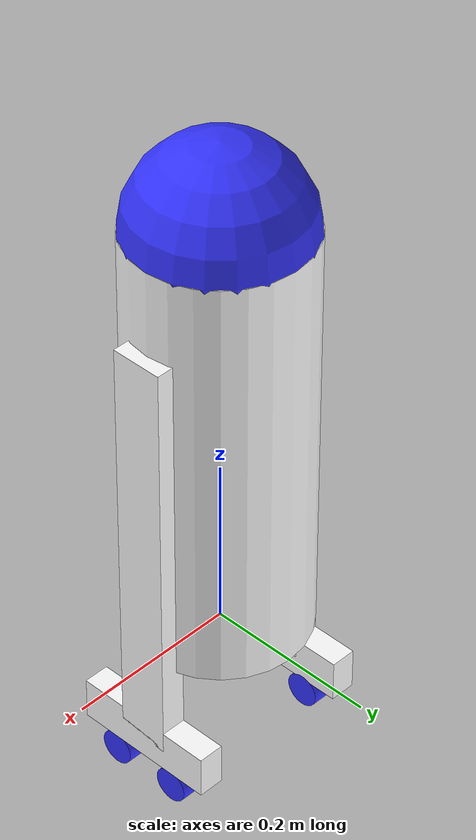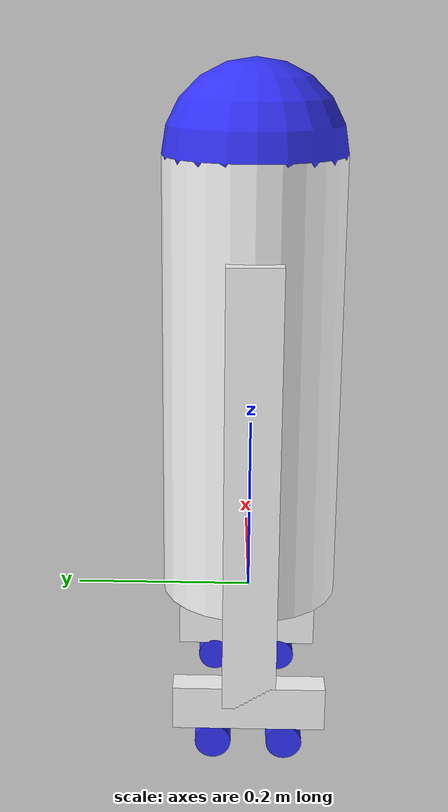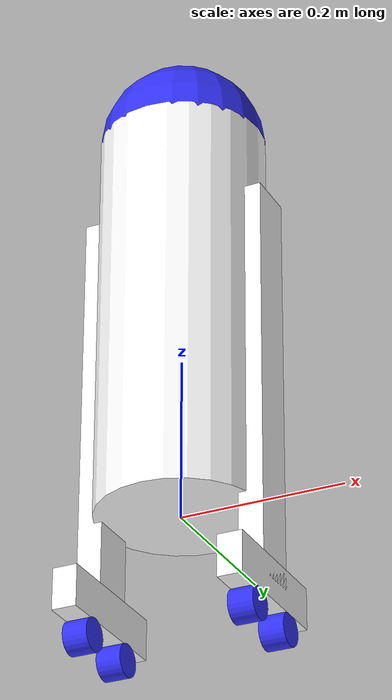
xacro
<?xml version="1.0"?>
<robot xmlns:xacro="http://www.ros.org/wiki/xacro" name="r2d2">

    <material name="white">
        <color rgba="1 1 1 1"/>
    </material>

    <material name="blue">
        <color rgba="0.2 0.2 1 1"/>
    </material>

    <material name="black">
        <color rgba="0 0 0 1"/>
    </material>

    <link name="base_link"></link>

    <joint name="base_footprint_joint" type="fixed">
        <parent link="base_link"/>
        <child link="base_footprint"/>
        <origin xyz="0 0 0" rpy="0 0 0"/>
    </joint>

    <link name="base_footprint"></link>

    <joint name="chassis_joint" type="fixed">
        <parent link="base_link"/>
        <child link="chassis"/>
        <origin xyz="0 0 0.25"/>
    </joint>

    <link name="chassis">
        <visual>
            <origin xyz="0 0 0"/>
            <geometry>
                <cylinder length="0.5" radius="0.1"/>
            </geometry>
            <material name="white"/>
        </visual>
        <collision>
            <origin xyz="0 0 0"/>
            <geometry>
                <cylinder length="0.5" radius="0.1"/>
            </geometry>
        </collision>
        <inertial>
            <mass value="1.0"/>
            <inertia ixx="0.0466667" iyy="0.0466667" izz="0.0100000" ixy="0.0" ixz="0.0" iyz="0.0"/>
        </inertial>
    </link>

    <joint name="head_joint" type="fixed">
        <parent link="base_link"/>
        <child link="head"/>
        <origin xyz="0 0 0.5"/>
        <axis xyz='0 0 1'/>
    </joint>

    <link name="head">
        <visual>
            <origin xyz="0 0 0" rpy="0 0 0"/>
            <geometry>
                <sphere radius="0.1"/>
            </geometry>
            <material name="blue"/>
        </visual>
        <collision>
            <origin xyz="0 0 0" rpy="0 0 0"/>
            <geometry>
                <sphere radius="0.1"/>
            </geometry>
        </collision>
        <inertial>
            <mass value="0.1"/>
            <inertia ixx="0.0020000" iyy="0.0020000" izz="0.0020000" ixy="0.0" ixz="0.0" iyz="0.0"/>
        </inertial>
    </link>

    <joint name="left_leg_joint" type="fixed">
        <parent link="chassis"/>
        <child link="left_leg"/>
        <origin xyz="0.1 0 -0.1"/>
    </joint>

    <link name="left_leg">
        <visual>
            <origin xyz="0 0 0" rpy="0 0 0"/>
            <geometry>
                <box size="0.03 0.06 0.5"/>
            </geometry>
            <material name="white"/>
        </visual>
        <collision>
            <origin xyz="0 0 0" rpy="0 0 0"/>
            <geometry>
                <box size="0.03 0.06 0.5"/>
            </geometry>
        </collision>
        <inertial>
            <mass value="5"/>
            <inertia ixx="0.0063400" iyy="0.0062725" izz="0.0001125" ixy="0.0" ixz="0.0" iyz="0.0"/>
        </inertial>
    </link>

    <joint name="right_leg_joint" type="fixed">
        <parent link="chassis"/>
        <child link="right_leg"/>
        <origin xyz="-0.1 0 -0.1"/>
    </joint>

    <link name="right_leg">
        <visual>
            <origin xyz="0 0 0" rpy="0 0 0"/>
            <geometry>
                <box size="0.03 0.06 0.5"/>
            </geometry>
            <material name="white"/>
        </visual>
        <collision>
            <origin xyz="0 0 0" rpy="0 0 0"/>
            <geometry>
                <box size="0.03 0.06 0.5"/>
            </geometry>
        </collision>
        <inertial>
            <mass value="5"/>
            <inertia ixx="0.0063400" iyy="0.0062725" izz="0.0001125" ixy="0.0" ixz="0.0" iyz="0.0"/>
        </inertial>
    </link>

    <joint name="left_wheel_base_joint" type="fixed">
        <parent link="left_leg"/>
        <child link="left_wheel_base"/>
        <origin xyz="0 0 -0.25"/>
    </joint>

    <link name="left_wheel_base">
        <visual>
            <origin xyz="0 0 0" rpy="0 0 0"/>
            <geometry>
                <box size="0.03 0.17 0.05"/>
            </geometry>
            <material name="white"/>
        </visual>
        <collision>
            <origin xyz="0 0 0" rpy="0 0 0"/>
            <geometry>
                <box size="0.03 0.17 0.05"/>
            </geometry>
        </collision>
        <inertial>
            <mass value="5"/>
            <inertia ixx="0.0005233" iyy="0.0000567" izz="0.0004967" ixy="0.0" ixz="0.0" iyz="0.0"/>
        </inertial>
    </link>

    <joint name="right_wheel_base_joint" type="fixed">
        <parent link="right_leg"/>
        <child link="right_wheel_base"/>
        <origin xyz="0 0 -0.25"/>
    </joint>

    <link name="right_wheel_base">
        <visual>
            <origin xyz="0 0 0" rpy="0 0 0"/>
            <geometry>
                <box size="0.03 0.17 0.05"/>
            </geometry>
            <material name="white"/>
        </visual>
        <collision>
            <origin xyz="0 0 0" rpy="0 0 0"/>
            <geometry>
                <box size="0.03 0.17 0.05"/>
            </geometry>
        </collision>
        <inertial>
            <mass value="5"/>
            <inertia ixx="0.0005233" iyy="0.0000567" izz="0.0004967" ixy="0.0" ixz="0.0" iyz="0.0"/>
        </inertial>
    </link>

    <joint name="left_wheel_1_joint" type="continuous">
        <parent link="left_wheel_base"/>
        <child link="left_wheel_1"/>
        <origin xyz="0 0.04 -0.042" rpy="0 -1.5708 0"/>
        <axis xyz='0 0 1'/>
    </joint>

    <link name="left_wheel_1">
        <visual>
            <origin xyz="0 0 0"/>
            <geometry>
                <cylinder radius="0.02" length="0.03"/>
            </geometry>
            <material name="blue"/>
        </visual>
        <collision>
            <origin xyz="0 0 0"/>
            <geometry>
                <cylinder radius="0.02" length="0.03"/>
            </geometry>
        </collision>
        <inertial>
            <mass value="10"/>
            <inertia ixx="0.0000200" iyy="0.0000175" izz="0.0000175" ixy="0.0" ixz="0.0" iyz="0.0"/>
        </inertial>
    </link>

    <joint name="left_wheel_2_joint" type="continuous">
        <parent link="left_wheel_base"/>
        <child link="left_wheel_2"/>
        <origin xyz="0 -0.04 -0.042" rpy="0 -1.5708 0"/>
        <axis xyz='0 0 1'/>
    </joint>

    <link name="left_wheel_2">
        <visual>
            <origin xyz="0 0 0"/>
            <geometry>
                <cylinder radius="0.02" length="0.03"/>
            </geometry>
            <material name="blue"/>
        </visual>
        <collision>
            <origin xyz="0 0 0"/>
            <geometry>
                <cylinder radius="0.02" length="0.03"/>
            </geometry>
        </collision>
        <inertial>
            <mass value="10"/>
            <inertia ixx="0.0000200" iyy="0.0000175" izz="0.0000175" ixy="0.0" ixz="0.0" iyz="0.0"/>
        </inertial>
    </link>

    <joint name="right_wheel_1_joint" type="continuous">
        <parent link="right_wheel_base"/>
        <child link="right_wheel_1"/>
        <origin xyz="0 0.04 -0.042" rpy="0 1.5708 0"/>
        <axis xyz='0 0 -1'/>
    </joint>

    <link name="right_wheel_1">
        <visual>
            <origin xyz="0 0 0"/>
            <geometry>
                <cylinder radius="0.02" length="0.03"/>
            </geometry>
            <material name="blue"/>
        </visual>
        <collision>
            <origin xyz="0 0 0"/>
            <geometry>
                <cylinder radius="0.02" length="0.03"/>
            </geometry>
        </collision>
        <inertial>
            <mass value="10"/>
            <inertia ixx="0.0000200" iyy="0.0000175" izz="0.0000175" ixy="0.0" ixz="0.0" iyz="0.0"/>
        </inertial>
    </link>

    <joint name="right_wheel_2_joint" type="continuous">
        <parent link="right_wheel_base"/>
        <child link="right_wheel_2"/>
        <origin xyz="0 -0.04 -0.042" rpy="0 1.5708 0"/>
        <axis xyz='0 0 -1'/>
    </joint>

    <link name="right_wheel_2">
        <visual>
            <origin xyz="0 0 0"/>
            <geometry>
                <cylinder radius="0.02" length="0.03"/>
            </geometry>
            <material name="blue"/>
        </visual>
        <collision>
            <origin xyz="0 0 0"/>
            <geometry>
                <cylinder radius="0.02" length="0.03"/>
            </geometry>
        </collision>
        <inertial>
            <mass value="10"/>
            <inertia ixx="0.0000200" iyy="0.0000175" izz="0.0000175" ixy="0.0" ixz="0.0" iyz="0.0"/>
        </inertial>
    </link>

    <gazebo reference="base_link">
        <plugin name="diff_drive_controller" filename="libgazebo_ros_diff_drive.so">
            <!--Update rate in Hz-->
            <update_rate>50</update_rate>
            <!--wheels-->
            <left_joint>right_wheel_1_joint</left_joint>
            <right_joint>left_wheel_1_joint</right_joint>

            <!--kinematics-->
            <wheel_separation>0.28</wheel_separation>
            <wheel_diameter>0.04</wheel_diameter>
            <!--output-->
            <publish_odom>true</publish_odom>
            <publish_odom_tf>true</publish_odom_tf>
            <publish_wheel_tf>true</publish_wheel_tf>
            <odometry_topic>odom</odometry_topic>
            <odometry_frame>odom</odometry_frame>
            <robot_base_frame>base_link</robot_base_frame>
        </plugin>
    </gazebo>

</robot>
